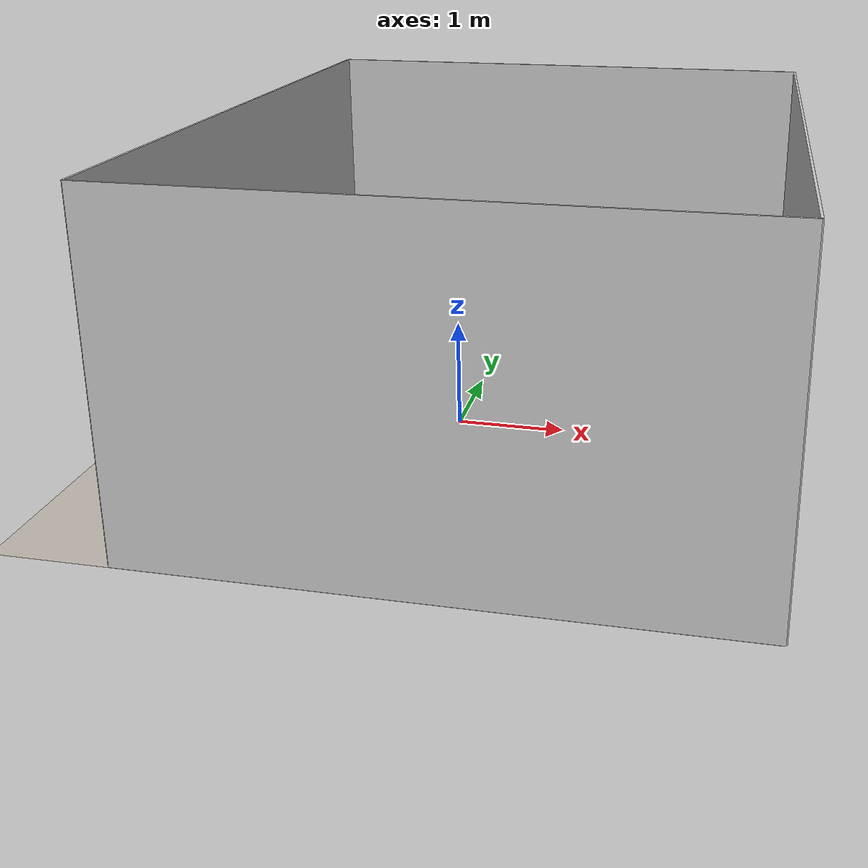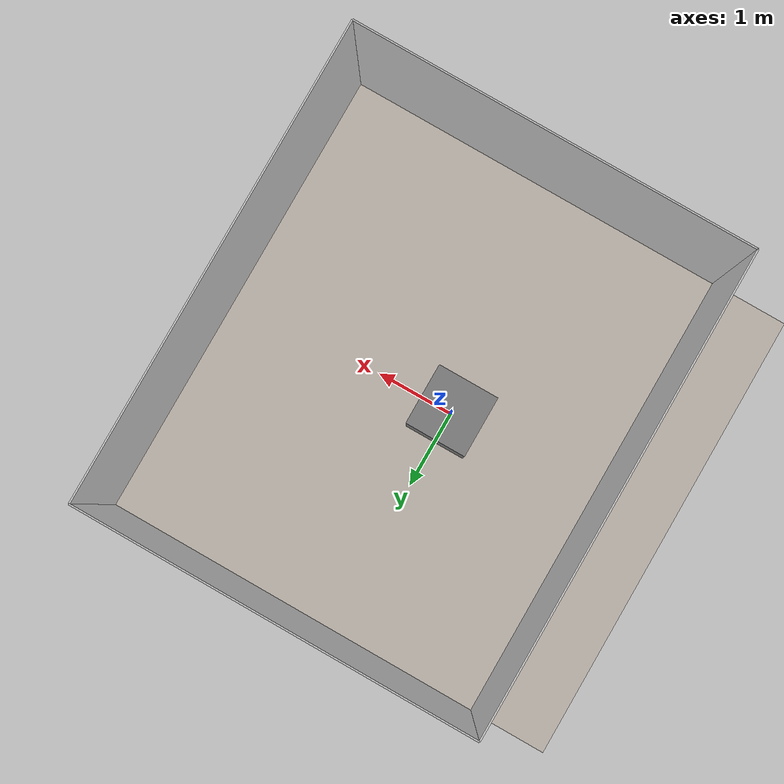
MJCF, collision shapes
<mujoco model="table_arena">
  <asset>
    <texture builtin="gradient" height="256" rgb1=".9 .9 1." rgb2=".2 .3 .4" type="skybox" width="256"/>
    <texture file="../textures/tile_grigia_caldera_porcelain_floor.png" type="2d" name="texplane"/>

    <material name="floorplane" reflectance="0.0" shininess="0.0"
	      specular="0.0" texrepeat="3 3" texture="texplane" texuniform="true"/>
    <!-- ceramic table texture and material-->
    <texture file="../textures/martin_novak_wood_table.png" type="cube" name="tex-table"/>
    <material name="table_texture" reflectance="0.0" shininess="0.0" specular="0.2" texrepeat="1 1" texture="tex-table" />
    <!-- steel legs -->
    <texture file="../textures/martin_novak_wood_table.png" type="cube" name="tex-table-legs"/>
    <material name="table_legs" reflectance="0.8" shininess="0.8" texrepeat="1 1" texture="tex-table-legs" />
    <!-- plaster walls -->
    <texture file="../textures/smooth_light_gray_plaster.png" type="2d" name="tex-wall"/>

    <material name="walls_mat" reflectance="0.0" shininess="0.3" specular="0.8" texrepeat="3 3" texture="tex-wall" texuniform="true" />
    <!-- added table texture and material for domain randomization -->
    <texture  name="textable" builtin="flat" height="512" width="512" rgb1="0.8 0.8 0.8" rgb2="0.8 0.8 0.8"/>
    <material name="table_mat" texture="textable" />

    <texture file="kitchen_background/kitchen_background.png" name="tex-kitchen_background" type="2d"/>
    <material name="kitchen_background" reflectance="0.5" texrepeat="1 1" texture="tex-kitchen_background" texuniform="false"/>
    <mesh file="kitchen_background/visual/kitchen_background_vis.msh" name="kitchen_background_vis" scale="0.01 0.01 0.01"/>

    <texture file="kitchen_background_pot/kitchen_background_pot.png" name="tex-kitchen_background_pot" type="2d"/>
    <material name="kitchen_background_pot" reflectance="0.5" texrepeat="1 1" texture="tex-kitchen_background_pot" texuniform="false"/>
    <mesh file="kitchen_background_pot/visual/kitchen_background_pot_vis.msh" name="kitchen_background_pot_vis" scale="0.01 0.01 0.01"/>

    <material name="kitchen_background_hot_pot" reflectance="0.5" rgba="0.4 0.4 0.4 1.0" />
    <mesh file="kitchen_background_hot_pot/visual/kitchen_background_hot_pot_vis.msh" name="kitchen_background_hot_pot_vis" scale="0.01 0.01 0.01"/>

    <texture file="kitchen_background_stove/kitchen_background_stove.png" name="tex-kitchen_background_stove" type="2d"/>
    <material name="kitchen_background_stove" reflectance="0.5" texrepeat="1 1" texture="tex-kitchen_background_stove" texuniform="false"/>
    <mesh file="kitchen_background_stove/visual/kitchen_background_stove_vis.msh" name="kitchen_background_stove_vis" scale="0.01 0.01 0.01"/>

    <texture file="fridge/metal.png" name="tex-kitchen_background_fridge" type="2d"/>
    <material name="kitchen_background_fridge" reflectance="0.9" texrepeat="1 1" texture="tex-kitchen_background_fridge" texuniform="false"/>
    <mesh file="fridge/visual/fridge_vis.msh" name="kitchen_background_fridge_vis" scale="0.01 0.01 0.01"/>

  </asset>
  <worldbody>
    <!-- Floor -->
    <geom condim="3" group="1" material="floorplane" name="floor" pos="0 0 0" size="3 3 .125" type="plane"/>
    <geom pos="-1.65 0.0 0.90" quat="0 0 0 1" type="mesh" mesh="kitchen_background_stove_vis" conaffinity="0" contype="0" group="1" material="kitchen_background_stove"/>
    <geom pos="-1.50 0.23 0.93" quat="0.30 0 0 0.90" type="mesh" mesh="kitchen_background_hot_pot_vis" conaffinity="0" contype="0" group="1" material="kitchen_background_hot_pot"/>
    <geom pos="-1.85 -0.85 0.90" quat="0 0 0 1" type="mesh" mesh="kitchen_background_pot_vis" conaffinity="0" contype="0" group="1" material="kitchen_background_pot"/>
    <geom pos="-1.75 -2.4 0" quat="0 0 0 1" type="mesh" mesh="kitchen_background_fridge_vis" conaffinity="0" contype="0" group="1" material="kitchen_background_fridge"/>
    <geom pos="-1.65 0.0 0.0" quat="0 0 0 1" type="mesh" mesh="kitchen_background_vis" conaffinity="0" contype="0" group="1" material="kitchen_background"/>

    <light name="light_kitchen" diffuse=".8 .8 .8" dir="0 0 -1" directional="true" pos="-1.75 0 1.6" specular="0.8 0.8 0.8" castshadow="false"/>

    <geom pos="0.5 3 1.5" quat="0.7071 0.7071 0 0" size="2.5 1.5 0.01" type="box" conaffinity="0" contype="0" group="1" name="wall_left_visual" material="walls_mat"/>
    <geom pos="0.5 -3 1.5" quat="0.7071 -0.7071 0 0" size="2.5 1.5 0.01" type="box" conaffinity="0" contype="0" group="1" name="wall_right_visual" material="walls_mat"/>
    <geom pos="-2 0 1.5" quat="0.5 0.5 0.5 0.5" size="3 1.5 0.01" type="box" conaffinity="0" contype="0" group="1" name="wall_rear_visual" material="walls_mat"/>
    <geom pos="3 0 1.5" quat="0.5 0.5 -0.5 -0.5" size="3 1.5 0.01" type="box" conaffinity="0" contype="0" group="1" name="wall_front_visual" material="walls_mat"/>
    <!-- Table body -->
    <body name="table" pos="0 0 0.4">
      <geom pos="0 0 0" size="0.4 0.4 0.4" type="box" group="0" name="table_collision" friction="1 0.005 0.0001"/>
      <geom pos="0 0 0" size="0.4 0.4 0.4" type="box" conaffinity="0" contype="0" group="1" name="table_visual" material="table_texture"/>
      <site pos="0 0 0.4" name="table_top" size="0.001 0.001 0.001" rgba="0 0 0 0"/>
      <!-- Legs (visual only) -->
      <geom pos="0 0 0" size="0.05 0.1" type="cylinder" conaffinity="0" contype="0" group="1" name="table_leg1_visual" material="table_legs"/>
      <geom pos="0 0 0" size="0.05 0.1" type="cylinder" conaffinity="0" contype="0" group="1" name="table_leg2_visual" material="table_legs"/>
      <geom pos="0 0 0" size="0.05 0.1" type="cylinder" conaffinity="0" contype="0" group="1" name="table_leg3_visual" material="table_legs"/>
      <geom pos="0 0 0" size="0.05 0.1" type="cylinder" conaffinity="0" contype="0" group="1" name="table_leg4_visual" material="table_legs"/>
    </body>

    <light name="light1" diffuse=".8 .8 .8" dir="0 -.15 -1" directional="false" pos="1 1 4.0" specular="0.3 0.3 0.3" castshadow="false"/>
    <light name="light2" diffuse=".8 .8 .8" dir="0 -.15 -1" directional="false" pos="-3. -3. 4.0" specular="0.3 0.3 0.3" castshadow="false"/>

    <!-- front view -->
    <camera mode="fixed" name="frontview" pos="1.0 0 1.45" quat="0.56 0.43 0.43 0.56"/>
    <!-- bird view -->
    <camera mode="fixed" name="birdview" pos="-0.2 0 3.0" quat="0.7071 0 0 0.7071"/>
    <!-- agent view -->
    <camera mode="fixed" name="agentview" pos="0.5 0 1.35" quat="0.653 0.271 0.271 0.653"/>
    <camera mode="fixed" name="agentview_30" pos="1.299 0.75 0.9" quat="0.3966 0.3045 0.5274 0.6869"/>
    <camera mode="fixed" name="agentview_60" pos="0.75 1.299 0.9" quat="0.2053 0.1576 0.5883 0.7661"/>
    <camera mode="fixed" name="agentview_330" pos="1.299 -0.75 0.9" quat="0.6869 0.5274 0.3045 0.3966"/>
    <camera mode="fixed" name="agentview_300" pos="0.75 -1.299 0.9" quat="0.7661 0.5883 0.1576 0.2053"/>
    <camera mode="fixed" name="agentview_120" pos="-0.75 1.299 0.9" quat="-0.2053 -0.1576 0.5883 0.7661"/>
    <camera mode="fixed" name="agentview_240" pos="-0.75 -1.299 0.9" quat="0.7661 0.5883 -0.1576 -0.2053"/>
    <camera mode="fixed" name="agentview_180" pos="-1.5 0.0 0.9" quat="-0.5608 -0.4306 0.4306 0.5608"/>
    <camera mode="fixed" name="agentview_90" pos="-0.75 -1.299 0.9" quat="0.7661 0.5883 -0.1576 -0.2053"/>
    <camera mode="fixed" name="agentview_270" pos="-1.5 0.0 0.9" quat="-0.5608 -0.4306 0.4306 0.5608"/>
    <camera mode="fixed" name="agentview_15" pos="1.299 0.75 0.9" quat="0.3966 0.3045 0.5274 0.6869"/>
    <camera mode="fixed" name="agentview_45" pos="1.299 0.75 0.9" quat="0.3966 0.3045 0.5274 0.6869"/>
    <camera mode="fixed" name="agentview_75" pos="1.299 0.75 0.9" quat="0.3966 0.3045 0.5274 0.6869"/>
    <camera mode="fixed" name="agentview_105" pos="1.299 0.75 0.9" quat="0.3966 0.3045 0.5274 0.6869"/>
    <camera mode="fixed" name="agentview_135" pos="1.299 0.75 0.9" quat="0.3966 0.3045 0.5274 0.6869"/>
    <camera mode="fixed" name="agentview_285" pos="1.299 0.75 0.9" quat="0.3966 0.3045 0.5274 0.6869"/>
    <camera mode="fixed" name="agentview_255" pos="1.299 0.75 0.9" quat="0.3966 0.3045 0.5274 0.6869"/>
    <camera mode="fixed" name="agentview_225" pos="1.299 0.75 0.9" quat="0.3966 0.3045 0.5274 0.6869"/>
    <camera mode="fixed" name="agentview_315" pos="1.299 0.75 0.9" quat="0.3966 0.3045 0.5274 0.6869"/>
    <camera mode="fixed" name="agentview_345" pos="1.299 0.75 0.9" quat="0.3966 0.3045 0.5274 0.6869"/>

    <camera mode="fixed" name="agentview_up_15_30" pos="1.299 0.75 0.9" quat="0.3966 0.3045 0.5274 0.6869"/>
    <camera mode="fixed" name="agentview_up_15_60" pos="0.75 1.299 0.9" quat="0.2053 0.1576 0.5883 0.7661"/>
    <camera mode="fixed" name="agentview_up_15_330" pos="1.299 -0.75 0.9" quat="0.6869 0.5274 0.3045 0.3966"/>
    <camera mode="fixed" name="agentview_up_15_300" pos="0.75 -1.299 0.9" quat="0.7661 0.5883 0.1576 0.2053"/>
    <camera mode="fixed" name="agentview_up_15_120" pos="-0.75 1.299 0.9" quat="-0.2053 -0.1576 0.5883 0.7661"/>
    <camera mode="fixed" name="agentview_up_15_240" pos="-0.75 -1.299 0.9" quat="0.7661 0.5883 -0.1576 -0.2053"/>
    <camera mode="fixed" name="agentview_up_15_180" pos="-1.5 0.0 0.9" quat="-0.5608 -0.4306 0.4306 0.5608"/>
    <camera mode="fixed" name="agentview_up_30_30" pos="1.299 0.75 0.9" quat="0.3966 0.3045 0.5274 0.6869"/>
    <camera mode="fixed" name="agentview_up_30_60" pos="0.75 1.299 0.9" quat="0.2053 0.1576 0.5883 0.7661"/>
    <camera mode="fixed" name="agentview_up_30_330" pos="1.299 -0.75 0.9" quat="0.6869 0.5274 0.3045 0.3966"/>
    <camera mode="fixed" name="agentview_up_30_300" pos="0.75 -1.299 0.9" quat="0.7661 0.5883 0.1576 0.2053"/>
    <camera mode="fixed" name="agentview_up_30_120" pos="-0.75 1.299 0.9" quat="-0.2053 -0.1576 0.5883 0.7661"/>
    <camera mode="fixed" name="agentview_up_30_240" pos="-0.75 -1.299 0.9" quat="0.7661 0.5883 -0.1576 -0.2053"/>
    <camera mode="fixed" name="agentview_up_30_180" pos="-1.5 0.0 0.9" quat="-0.5608 -0.4306 0.4306 0.5608"/>
    <camera mode="fixed" name="agentview_up_345_30" pos="1.299 0.75 0.9" quat="0.3966 0.3045 0.5274 0.6869"/>
    <camera mode="fixed" name="agentview_up_345_60" pos="0.75 1.299 0.9" quat="0.2053 0.1576 0.5883 0.7661"/>
    <camera mode="fixed" name="agentview_up_345_330" pos="1.299 -0.75 0.9" quat="0.6869 0.5274 0.3045 0.3966"/>
    <camera mode="fixed" name="agentview_up_345_300" pos="0.75 -1.299 0.9" quat="0.7661 0.5883 0.1576 0.2053"/>
    <camera mode="fixed" name="agentview_up_345_120" pos="-0.75 1.299 0.9" quat="-0.2053 -0.1576 0.5883 0.7661"/>
    <camera mode="fixed" name="agentview_up_345_240" pos="-0.75 -1.299 0.9" quat="0.7661 0.5883 -0.1576 -0.2053"/>
    <camera mode="fixed" name="agentview_up_345_180" pos="-1.5 0.0 0.9" quat="-0.5608 -0.4306 0.4306 0.5608"/>
    <camera mode="fixed" name="agentview_up_15" pos="0.5 0 1.35" quat="0.653 0.271 0.271 0.653"/>
    <camera mode="fixed" name="agentview_up_30" pos="0.5 0 1.35" quat="0.653 0.271 0.271 0.653"/>
    <camera mode="fixed" name="agentview_up_345" pos="0.5 0 1.35" quat="0.653 0.271 0.271 0.653"/>

    <!-- side view -->
    <camera mode="fixed" name="sideview" pos="-0.05651774593317116 1.2761224129427358 1.4879572214102434" quat="0.009905065491771751 0.006877963156909582 0.5912228352893879 0.806418094001364" />
  </worldbody>
</mujoco>
